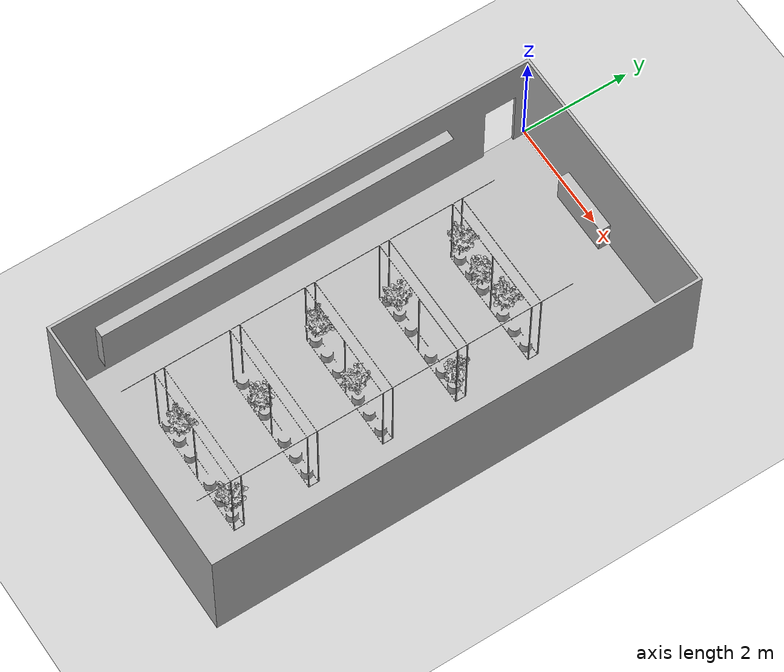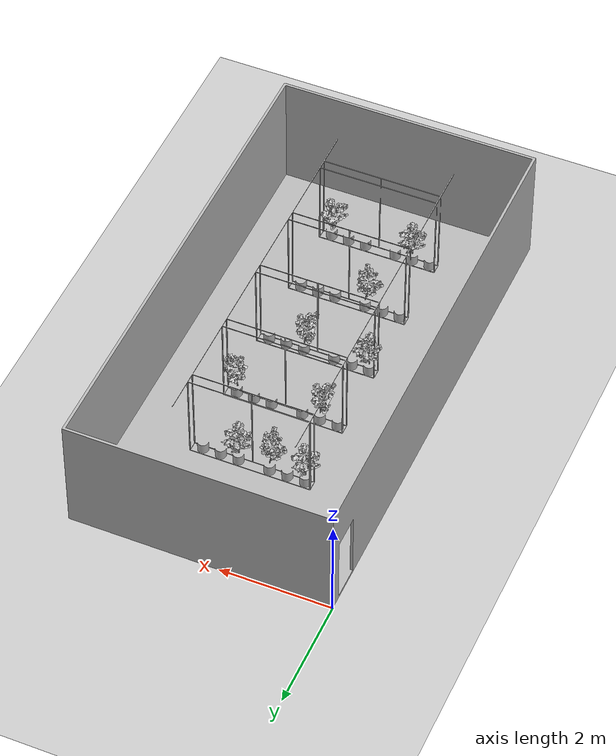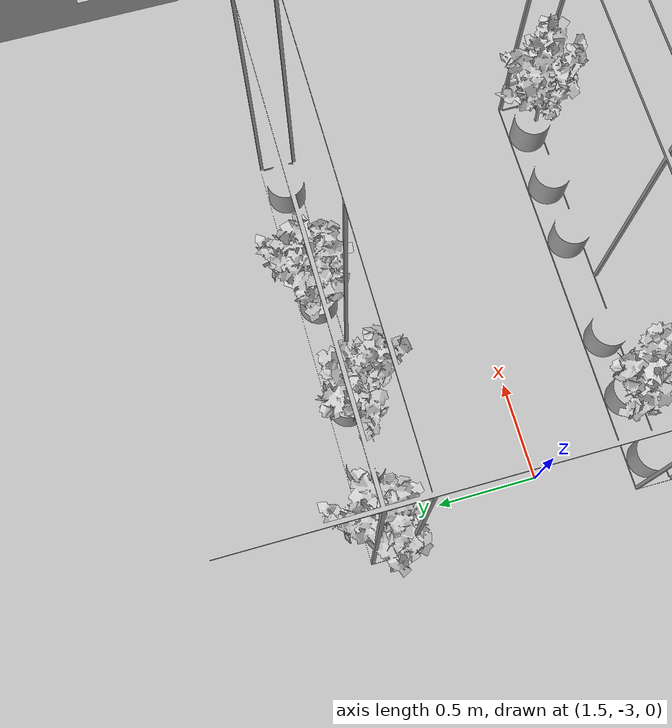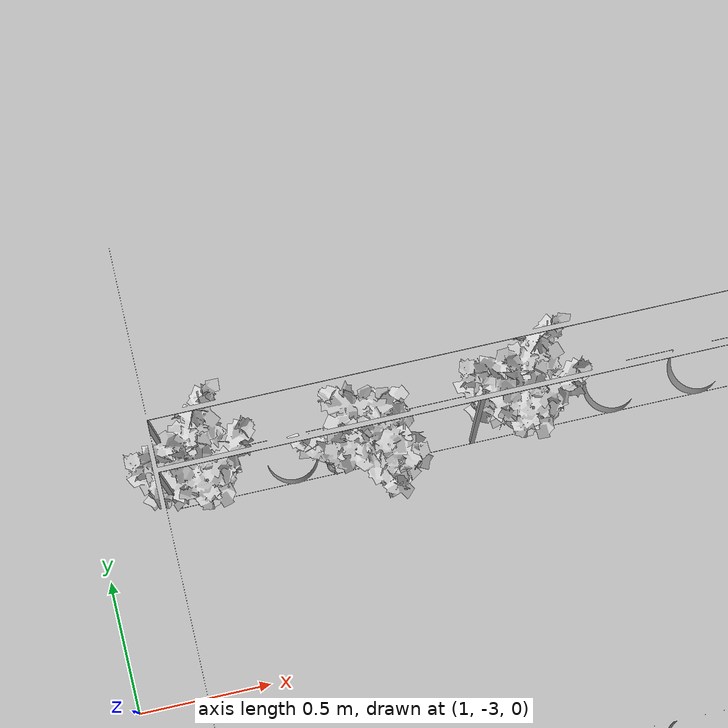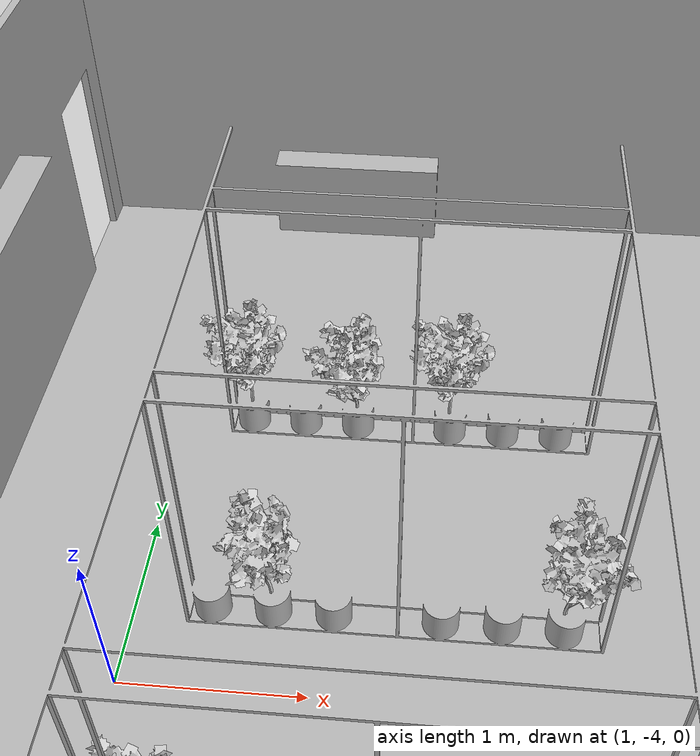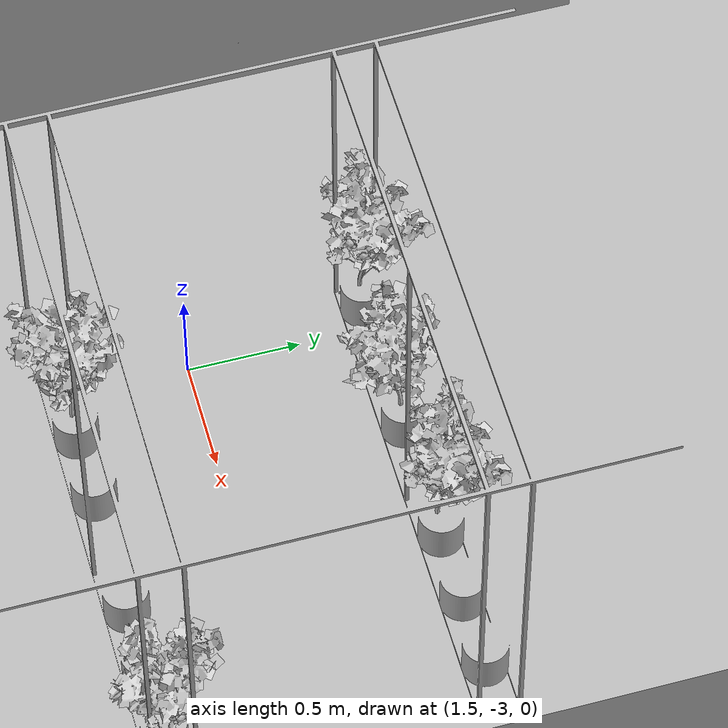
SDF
<?xml version="1.0"?>

<sdf version="1.4">
  <world name="default">
    <scene>
      <ambient>0.4 0.4 0.4 1</ambient>
      <background>0.7 0.7 0.7 1</background>
      <shadows>false</shadows>
    </scene>

    <include>
      <uri>model://ground_plane</uri>
    </include>
    <include>
      <uri>model://sun</uri>
    </include>
    <include>
      <uri>model://greenhouse-treeless</uri>
    </include>

    <!-- trees -->
    <include>
      <uri>model://tree-flowers</uri>
      <pose>1.44 -2.21 0.24 0 0 0.276</pose>
    </include>
    <include>
      <uri>model://tree-flowers</uri>
      <pose>2.08 -2.21 0.24 0 0 2.132</pose>
    </include>
    <include>
      <uri>model://tree-flowers</uri>
      <pose>2.64 -2.21 0.24 0 0 6.25</pose>
    </include>
    <include>
      <uri>model://tree-flowers</uri>
      <pose>1.76 -3.56 0.24 0 0 1.259</pose>
    </include>
    <include>
      <uri>model://tree-flowers</uri>
      <pose>3.28 -3.56 0.24 0 0 5.014</pose>
    </include>
    <include>
      <uri>model://tree-flowers</uri>
      <pose>1.44 -4.91 0.24 0 0 5.981</pose>
    </include>
    <include>
      <uri>model://tree-flowers</uri>
      <pose>2.64 -4.91 0.24 0 0 1.388</pose>
    </include>
    <include>
      <uri>model://tree-flowers</uri>
      <pose>2.08 -6.26 0.24 0 0 2.322</pose>
    </include>
    <include>
      <uri>model://tree-flowers</uri>
      <pose>1.76 -7.61 0.24 0 0 0.049</pose>
    </include>
    <include>
      <uri>model://tree-flowers</uri>
      <pose>3.28 -7.61 0.24 0 0 0.679</pose>
    </include>

    <physics type='ode'>
      <ode>
        <solver>
          <friction_model>cone_model</friction_model>
        </solver>
      </ode>
    </physics>
  </world>
</sdf>

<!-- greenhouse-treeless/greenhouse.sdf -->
<sdf version="1.5">
    <model name="greenhouse-treeless">
      <static>true</static>
      <link name="body">
        <visual name="visual">
          <geometry>
            <mesh><uri>model://greenhouse-treeless/meshes/greenhouse-treeless.dae</uri></mesh>
          </geometry>
        </visual>
        <collision name='collision'>
          <geometry>
            <mesh><uri>model://greenhouse-treeless/meshes/greenhouse-treeless.dae</uri></mesh>
          </geometry>
        </collision>
      </link>
    </model>
</sdf>

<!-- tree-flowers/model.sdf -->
<sdf version="1.6">
  <model name="tree-flowers">
    <static>true</static>
    <link name="link"></link>

    <include>
      <uri>model://tree-mesh</uri>
      <pose>0 0 0 0 0 0</pose>
    </include>
    <joint name="tree_joint" type="fixed">
      <child>tree-mesh::link</child>
      <parent>link</parent>
    </joint>

    <include>
      <name>bramble_0</name>
      <uri>model://bramble</uri>
      <pose>0.107537 -0.046881 0.402327 -1.00423 1.504 -1.45072</pose>
    </include>
    <include>
      <name>bramble_1</name>
      <uri>model://bramble</uri>
      <pose>-0.058506 -0.057965 0.348676 1.46057 -0.026669 -0.236442</pose>
    </include>
    <include>
      <name>bramble_2</name>
      <uri>model://bramble</uri>
      <pose>0.015803 0.202531 0.358288 -1.42731 0 0</pose>
    </include>
    <include>
      <name>bramble_3</name>
      <uri>model://bramble</uri>
      <pose>0.067876 -0.089279 0.474349 1.08554 0.353465 0.580889</pose>
    </include>
    <include>
      <name>bramble_4</name>
      <uri>model://bramble</uri>
      <pose>-0.198057 -0.016410 0.499770 0 -1.49206 0</pose>
    </include>
    <include>
      <name>bramble_5</name>
      <uri>model://bramble</uri>
      <pose>0.087757 0.104908 0.596102 0 1.49055 0</pose>
    </include>

    <joint name="flower_joint_0" type="fixed">
      <child>bramble_0::flower_link</child>
      <parent>link</parent>
    </joint>
    <joint name="flower_joint_1" type="fixed">
      <child>bramble_1::flower_link</child>
      <parent>link</parent>
    </joint>
    <joint name="flower_joint_2" type="fixed">
      <child>bramble_2::flower_link</child>
      <parent>link</parent>
    </joint>
    <joint name="flower_joint_3" type="fixed">
      <child>bramble_3::flower_link</child>
      <parent>link</parent>
    </joint>
    <joint name="flower_joint_4" type="fixed">
      <child>bramble_4::flower_link</child>
      <parent>link</parent>
    </joint>
    <joint name="flower_joint_5" type="fixed">
      <child>bramble_5::flower_link</child>
      <parent>link</parent>
    </joint>

  </model>
</sdf>

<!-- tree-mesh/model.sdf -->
<sdf version="1.6">
  <model name="tree-mesh">
    <static>true</static>
    <link name="link">

      <collision name="collision">
        <geometry>
          <mesh>
            <uri>model://tree-mesh/meshes/new_tree.dae</uri>
            <scale>0.0625 0.0625 0.0625</scale>
          </mesh>
        </geometry>
      </collision>

      <!-- simplified collision for sake of speed since leaves shouldn't be blocking anyway -->

      <visual name="leaves">
        <geometry>
          <mesh>
            <uri>model://tree-mesh/meshes/leaves.dae</uri>
            <scale>0.0325 0.0325 0.0325</scale>
          </mesh>
        </geometry>
        <material>
          <script>
            <uri>model://tree-mesh/materials/scripts/</uri>
            <uri>model://tree-mesh/materials/textures/</uri>
            <name>NewTree/Branch</name>
          </script>
        </material>
      </visual>
      <visual name="bark">
        <geometry>
          <mesh>
            <uri>model://tree-mesh/meshes/bark.dae</uri>
            <scale>0.0325 0.0325 0.0325</scale>
          </mesh>
        </geometry>
        <material>
          <script>
            <uri>model://tree-mesh/materials/scripts/</uri>
            <uri>model://tree-mesh/materials/textures/</uri>
            <name>NewTree/Bark</name>
          </script>
        </material>
      </visual>
    </link>
  </model>
</sdf>

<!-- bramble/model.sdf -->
<sdf version="1.6">
  <model name="bramble-flower">
    <static>true</static>
    <link name="flower_link">
      <collision name="body_collision">
        <geometry>
          <mesh>
            <uri>model://bramble/meshes/bramble.dae</uri>
            <scale>0.4 0.4 0.4</scale>
          </mesh>
        </geometry>
      </collision>
      <visual name="petals">
        <geometry>
          <mesh>
            <uri>model://bramble/meshes/bramble.dae</uri>
            <scale>0.4 0.4 0.4</scale>
            <submesh>
              <name>petal</name>
            </submesh>
          </mesh>
        </geometry>
        <material>
          <script>
            <uri>model://bramble/materials/scripts/</uri>
            <uri>model://bramble/materials/textures/</uri>
            <name>Bramble/Petal</name>
          </script>
        </material>
      </visual>
      <visual name="carpel">
        <geometry>
          <mesh>
            <uri>model://bramble/meshes/bramble.dae</uri>
            <scale>0.4 0.4 0.4</scale>
            <submesh>
              <name>carpel</name>
            </submesh>
          </mesh>
        </geometry>
        <material>
          <script>
            <uri>model://bramble/materials/scripts/</uri>
            <uri>model://bramble/materials/textures/</uri>
            <name>Bramble/Carpel</name>
          </script>
        </material>
      </visual>
      <visual name="stamen">
        <geometry>
          <mesh>
            <uri>model://bramble/meshes/bramble.dae</uri>
            <scale>0.4 0.4 0.4</scale>
            <submesh>
              <name>stamen</name>
            </submesh>
          </mesh>
        </geometry>
        <material>
          <script>
            <uri>model://bramble/materials/scripts/</uri>
            <uri>model://bramble/materials/textures/</uri>
            <name>Bramble/Stamen</name>
          </script>
        </material>
      </visual>
    </link>
  </model>
</sdf>
